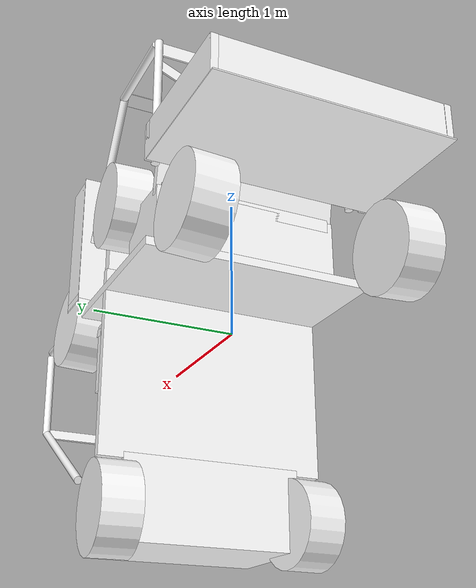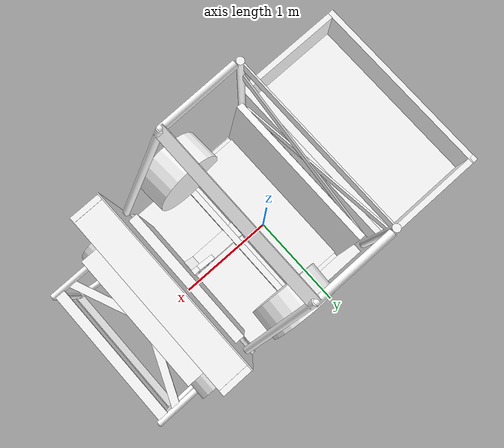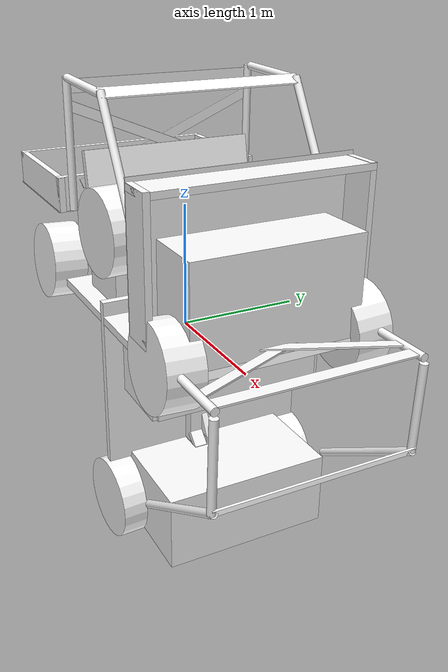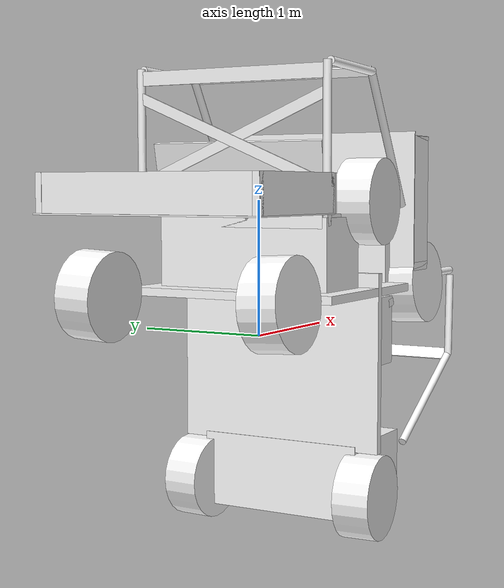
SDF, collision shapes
<?xml version="1.0" encoding="UTF-8"?>
<sdf version='1.9'>
   <model name="x500_dcamera">

    <include merge='true'>
      <name>x500</name>
      <pose>0 0 0 0 0 0</pose>
      <uri>model://x500/model.sdf</uri>
    </include>

    <include merge='true'>
      <name>dcamera</name>
      <pose>0 0 0 0 1.5708 0</pose>
      <uri>model://camera/model.sdf</uri>
    </include>

    <joint name="camera_joint" type="fixed">
      <parent>base_link</parent>
      <child>camera_link</child>
      <axis>
        <xyz>0 1 0</xyz>
      </axis>
    </joint>

    <static>false</static>

  </model>
</sdf>

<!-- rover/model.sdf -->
<sdf version="1.5">
  <model name="rover">
    <static>false</static>
    <link name="base_link">
      <inertial>
        <!-- subtracted wheel weights from dry weight of 771 kg -->
        <!-- http://www.polaris.com/en-us/ranger-utv/side-by-sides/ranger-ev/specifications -->
        <mass>720.0</mass>
        <inertia>
          <ixx>140</ixx>
          <ixy>0.0</ixy>
          <iyy>550</iyy>
          <ixz>0.0</ixz>
          <iyz>0.0</iyz>
          <izz>550</izz>
        </inertia>
        <!-- chassis c.o.g. near lateral/longitudinal center, height of 0.4 m -->
        <pose>0.1 0 0.4 0 0 0</pose>
      </inertial>
      <visual name="visual">
        <pose>0 0 0 0 0 -1.570796</pose>
        <geometry>
          <mesh>
            <uri>model://rover/meshes/polaris.dae</uri>
            <submesh>
              <name>Body</name>
              <center>false</center>
            </submesh>
          </mesh>
        </geometry>
        <material>
          <diffuse>1.0 1.0 1.0</diffuse>
          <specular>1.0 1.0 1.0</specular>
          <pbr>
            <metal>
              <albedo_map>model://rover/materials/textures/RangerXP900_Diffuse.png</albedo_map>
            </metal>
          </pbr>
        </material>
      </visual>
      <collision name="base_link_bottom">
        <pose>0.2 0.0 0.335 0 0 0</pose>
        <geometry>
          <box>
            <size>1.34 1.65746 0.06</size>
          </box>
        </geometry>
      </collision>
      <collision name="cargo_bottom">
        <pose>-1.0 0.0 0.921 0.0 0.0 0.0</pose>
        <geometry>
          <box>
            <size>1.04609 1.6998 0.01</size>
          </box>
        </geometry>
      </collision>
      <collision name="cargo_front">
        <pose>-0.495 0.0 1.06 0.0 0.0 0.0</pose>
        <geometry>
          <box>
            <size>0.05 1.69982 0.27</size>
          </box>
        </geometry>
      </collision>
      <collision name="cargo_back">
        <pose>-1.465 0.0 1.06 0.0 0.0 0.0</pose>
        <geometry>
          <box>
            <size>0.05 1.69982 0.27</size>
          </box>
        </geometry>
      </collision>
      <collision name="cargo_left">
        <pose>-0.97 0.82491 1.06 0.0 0.0 0.0</pose>
        <geometry>
          <box>
            <size>1.04609 0.05 0.27</size>
          </box>
        </geometry>
      </collision>
      <collision name="cargo_right">
        <pose>-0.97 -0.82491 1.06 0.0 0.0 0.0</pose>
        <geometry>
          <box>
            <size>1.04609 0.05 0.27</size>
          </box>
        </geometry>
      </collision>
      <collision name="seat">
        <pose>0.0 0.0 0.62 0 0 0</pose>
        <geometry>
          <box>
            <size>0.52167 1.37206 0.53369</size>
          </box>
        </geometry>
        <surface>
          <contact>
            <ode>
              <min_depth>0.01</min_depth>
            </ode>
          </contact>
        </surface>
      </collision>
      <collision name="mud_seat">
        <pose>0.0 0.0 0.86 0 0 0</pose>
        <geometry>
          <box>
            <size>0.52167 1.30 0.1</size>
          </box>
        </geometry>
        <surface>
          <contact>
            <collide_without_contact>true</collide_without_contact>
          </contact>
        </surface>
      </collision>
      <sensor name="seat_contact" type="contact">
        <always_on>true</always_on>
        <update_rate>1000</update_rate>
        <contact>
          <collision>mud_seat</collision>
        </contact>
      </sensor>
      <collision name="seat_back">
        <pose>-0.26 0.0 1.125 0.0 -0.2 0.0</pose>
        <geometry>
          <box>
            <size>0.06 1.37206 0.6</size>
          </box>
        </geometry>
      </collision>
      <collision name="engine">
        <pose>1.12 0.0 0.7 0.0 0.0 0.0</pose>
        <geometry>
          <box>
            <size>0.58 1.3 0.8</size>
          </box>
        </geometry>
      </collision>
      <collision name="rollcage_top_left">
        <pose>-0.02 0.76 1.936 0 1.60 0</pose>
        <geometry>
          <cylinder>
            <radius>0.03</radius>
            <length>0.68</length>
          </cylinder>
        </geometry>
      </collision>
      <collision name="rollcage_top_right">
        <pose>-0.02 -0.76 1.936 0 1.60 0</pose>
        <geometry>
          <cylinder>
            <radius>0.03</radius>
            <length>0.68</length>
          </cylinder>
        </geometry>
      </collision>
      <collision name="rollcage_top_front">
        <pose>0.315 0.0 1.93 0 -1.0 0</pose>
        <geometry>
          <box>
            <size>0.01299 1.54 0.10226</size>
          </box>
        </geometry>
      </collision>
      <collision name="rollcage_top_back">
        <pose>-0.410 0.0 1.88 0 0 0</pose>
        <geometry>
          <box>
            <size>0.01299 1.54 0.10226</size>
          </box>
        </geometry>
      </collision>
      <collision name="rollcage_front_left">
        <pose>0.602 0.755 1.45 0 -0.54 0</pose>
        <geometry>
          <cylinder>
            <radius>0.03</radius>
            <length>1.15</length>
          </cylinder>
        </geometry>
      </collision>
      <collision name="rollcage_front_right">
        <pose>0.602 -0.755 1.45 0 -0.54 0</pose>
        <geometry>
          <cylinder>
            <radius>0.03</radius>
            <length>1.15</length>
          </cylinder>
        </geometry>
      </collision>
      <collision name="rollcage_back_left">
        <pose>-0.4 0.755 1.45 0 0 0</pose>
        <geometry>
          <cylinder>
            <radius>0.03</radius>
            <length>1.00</length>
          </cylinder>
        </geometry>
      </collision>
      <collision name="rollcage_back_right">
        <pose>-0.4 -0.755 1.45 0 0 0</pose>
        <geometry>
          <cylinder>
            <radius>0.03</radius>
            <length>1.00</length>
          </cylinder>
        </geometry>
      </collision>
      <collision name="rollcage_X_1">
        <pose>-0.411 0.04 1.445 0.397 0 0</pose>
        <geometry>
          <box>
            <size>0.01392 1.557245 0.078</size>
          </box>
        </geometry>
      </collision>
      <collision name="rollcage_X_2">
        <pose>-0.40 -0.04 1.445 -0.397 0 0</pose>
        <geometry>
          <box>
            <size>0.01392 1.557245 0.078</size>
          </box>
        </geometry>
      </collision>
      <collision name="central_hump1_collision">
        <pose>0.55 -0.1 0.4 0 0 0</pose>
        <geometry>
          <box>
            <size>0.6 0.15 0.1</size>
          </box>
        </geometry>
      </collision>
      <collision name="central_hump2_collision">
        <pose>0.7 -0.05 0.45 0 -0.5 0</pose>
        <geometry>
          <box>
            <size>0.20 0.05 0.1</size>
          </box>
        </geometry>
      </collision>
      <collision name="central_hump3_collision">
        <pose>0.798 -0.125 0.478 0 -0.8 0</pose>
        <geometry>
          <box>
            <size>0.129 0.1 0.05</size>
          </box>
        </geometry>
      </collision>
      <collision name="central_hump4_collision">
        <pose>0.8135 -0.05 0.45 0 0 0</pose>
        <geometry>
          <box>
            <size>0.10 0.05 0.1835</size>
          </box>
        </geometry>
      </collision>
      <collision name="central_hump5_collision">
        <pose>0.84 -0.125 0.45 0 0 0</pose>
        <geometry>
          <box>
            <size>0.03 0.1 0.1835</size>
          </box>
        </geometry>
      </collision>
      <collision name="central_hump6_collision">
        <pose>0.82 -0.125 0.475 0 0 0</pose>
        <geometry>
          <box>
            <size>0.03 0.1 0.05</size>
          </box>
        </geometry>
      </collision>
      <visual name="cargo_visual">
        <pose>-1.0 0 1.03230 0 0 -1.5707</pose>
        <geometry>
          <mesh>
            <uri>model://rover/meshes/polaris.dae</uri>
            <submesh>
              <name>Bed</name>
              <center>true</center>
            </submesh>
          </mesh>
        </geometry>
        <material>
          <diffuse>1.0 1.0 1.0</diffuse>
          <specular>1.0 1.0 1.0</specular>
          <pbr>
            <metal>
              <albedo_map>model://rover/materials/textures/RangerXP900_Diffuse.png</albedo_map>
            </metal>
          </pbr>
        </material>
      </visual>
      <visual name="tailgate_visual">
        <pose>-1.492 0 1.03 0 0 -1.5707</pose>
        <geometry>
          <mesh>
            <uri>model://rover/meshes/polaris.dae</uri>
            <submesh>
              <name>Tail_Gate</name>
              <center>true</center>
            </submesh>
          </mesh>
        </geometry>
        <material>
          <diffuse>1.0 1.0 1.0</diffuse>
          <specular>1.0 1.0 1.0</specular>
          <pbr>
            <metal>
              <albedo_map>model://rover/materials/textures/RangerXP900_Diffuse.png</albedo_map>
            </metal>
          </pbr>
        </material>
      </visual>
      <visual name="front_left_brake_visual">
        <pose>1.12 -0.57488 0.35516 3.1415 0 1.5707</pose>
        <geometry>
          <mesh>
            <uri>model://rover/meshes/polaris.dae</uri>
            <submesh>
              <name>Brake_Front_Left</name>
              <center>true</center>
            </submesh>
          </mesh>
        </geometry>
        <material>
          <diffuse>1.0 1.0 1.0</diffuse>
          <specular>1.0 1.0 1.0</specular>
          <pbr>
            <metal>
              <albedo_map>model://rover/materials/textures/RangerXP900_Diffuse.png</albedo_map>
            </metal>
          </pbr>
        </material>
      </visual>
      <visual name="front_right_brake_visual">
        <pose>1.12 0.57488 0.35516 3.1415 0 1.5707</pose>
        <geometry>
          <mesh>
            <uri>model://rover/meshes/polaris.dae</uri>
            <submesh>
              <name>Brake_Front_Right</name>
              <center>true</center>
            </submesh>
          </mesh>
        </geometry>
        <material>
          <diffuse>1.0 1.0 1.0</diffuse>
          <specular>1.0 1.0 1.0</specular>
          <pbr>
            <metal>
              <albedo_map>model://rover/materials/textures/RangerXP900_Diffuse.png</albedo_map>
            </metal>
          </pbr>
        </material>
      </visual>
      <visual name="central_hump1">
        <pose>0.55 -0.1 0.4 0 0 0</pose>
        <geometry>
          <box>
            <size>0.6 0.15 0.1</size>
          </box>
        </geometry>
        <material>
          <script>
            <uri>file://media/materials/scripts/gazebo.material</uri>
            <name>Gazebo/DarkGrey</name>
          </script>
        </material>
      </visual>
      <visual name="central_hump2">
        <pose>0.7 -0.05 0.45 0 -0.5 0</pose>
        <geometry>
          <box>
            <size>0.20 0.05 0.1</size>
          </box>
        </geometry>
        <material>
          <script>
            <uri>file://media/materials/scripts/gazebo.material</uri>
            <name>Gazebo/DarkGrey</name>
          </script>
        </material>
      </visual>
      <visual name="central_hump3">
        <pose>0.798 -0.125 0.478 0 -0.8 0</pose>
        <geometry>
          <box>
            <size>0.129 0.1 0.05</size>
          </box>
        </geometry>
        <material>
          <script>
            <uri>file://media/materials/scripts/gazebo.material</uri>
            <name>Gazebo/DarkGrey</name>
          </script>
        </material>
      </visual>
      <visual name="central_hump4">
        <pose>0.8135 -0.05 0.45 0 0 0</pose>
        <geometry>
          <box>
            <size>0.10 0.05 0.1835</size>
          </box>
        </geometry>
        <material>
          <script>
            <uri>file://media/materials/scripts/gazebo.material</uri>
            <name>Gazebo/DarkGrey</name>
          </script>
        </material>
      </visual>
      <visual name="central_hump5">
        <pose>0.84 -0.125 0.45 0 0 0</pose>
        <geometry>
          <box>
            <size>0.03 0.1 0.1835</size>
          </box>
        </geometry>
        <material>
          <script>
            <uri>file://media/materials/scripts/gazebo.material</uri>
            <name>Gazebo/DarkGrey</name>
          </script>
        </material>
      </visual>
      <visual name="central_hump6">
        <pose>0.82 -0.125 0.475 0 0 0</pose>
        <geometry>
          <box>
            <size>0.03 0.1 0.05</size>
          </box>
        </geometry>
        <material>
          <script>
            <uri>file://media/materials/scripts/gazebo.material</uri>
            <name>Gazebo/DarkGrey</name>
          </script>
        </material>
      </visual>
    </link>
    <link name='rover/imu_link'>
      <pose>0 0 0 0 0 0</pose>
      <inertial>
        <pose>0 0 0 0 0 0</pose>
        <mass>0.015</mass>
        <inertia>
          <ixx>1e-05</ixx>
          <ixy>0</ixy>
          <ixz>0</ixz>
          <iyy>1e-05</iyy>
          <iyz>0</iyz>
          <izz>1e-05</izz>
        </inertia>
      </inertial>
    </link>
    <joint name='rover/imu_joint' type='revolute'>
      <child>rover/imu_link</child>
      <parent>base_link</parent>
      <axis>
        <xyz>1 0 0</xyz>
        <limit>
          <lower>0</lower>
          <upper>0</upper>
          <effort>0</effort>
          <velocity>0</velocity>
        </limit>
        <dynamics>
          <spring_reference>0</spring_reference>
          <spring_stiffness>0</spring_stiffness>
        </dynamics>
        <use_parent_model_frame>1</use_parent_model_frame>
      </axis>
    </joint>
    <link name="front_left_wheel">
      <pose>1.20223 0.71562 0.34697 -1.52 0.0 0.0</pose>
      <inertial>
        <mass>12</mass>
        <!-- estimated from http://www.rzrforums.net/wheels-tires/1729-tire-wheel-weights-most-sizes.html -->
        <inertia>
          <ixx>0.5</ixx>
          <ixy>0.0</ixy>
          <iyy>0.5</iyy>
          <ixz>0.0</ixz>
          <iyz>0.0</iyz>
          <izz>1.0</izz>
        </inertia>
      </inertial>
      <collision name="collision">
        <geometry>
          <cylinder>
            <radius>0.3175</radius>
            <length>0.2794</length>
          </cylinder>
        </geometry>
        <max_contacts>1</max_contacts>
        <surface>
          <friction>
            <ode>
              <mu>1.0</mu>
              <mu2>1.0</mu2>
              <fdir1>0 0 1</fdir1>
              <slip1>0.0</slip1>
              <slip2>0.0</slip2>
            </ode>
          </friction>
          <contact>
            <ode>
              <min_depth>0.005</min_depth>
              <kp>1e8</kp>
            </ode>
          </contact>
        </surface>
      </collision>
      <visual name="tire_visual">
        <pose>0 0 0 3.14159 1.570796 0</pose>
        <geometry>
          <mesh>
            <uri>model://rover/meshes/polaris.dae</uri>
            <scale>1.003700111 0.886200464 0.886200464</scale>
            <submesh>
              <name>Wheel_Front_Left</name>
              <center>true</center>
            </submesh>
          </mesh>
        </geometry>
        <material>
          <diffuse>1.0 1.0 1.0</diffuse>
          <specular>1.0 1.0 1.0</specular>
          <pbr>
            <metal>
              <albedo_map>model://rover/materials/textures/RangerXP900_Diffuse.png</albedo_map>
            </metal>
          </pbr>
        </material>
      </visual>
    </link>
    <link name="front_right_wheel">
      <pose>1.20223 -0.71562 0.34697 1.52 0.0 0.0</pose>
      <inertial>
        <mass>12</mass>
        <!-- estimated from http://www.rzrforums.net/wheels-tires/1729-tire-wheel-weights-most-sizes.html -->
        <inertia>
          <ixx>0.5</ixx>
          <ixy>0.0</ixy>
          <iyy>0.5</iyy>
          <ixz>0.0</ixz>
          <iyz>0.0</iyz>
          <izz>1.0</izz>
        </inertia>
      </inertial>
      <collision name="collision">
        <geometry>
          <cylinder>
            <radius>0.3175</radius>
            <length>0.2794</length>
          </cylinder>
        </geometry>
        <max_contacts>1</max_contacts>
        <surface>
          <friction>
            <ode>
              <mu>1.0</mu>
              <mu2>1.0</mu2>
              <fdir1>0 0 1</fdir1>
              <slip1>0.0</slip1>
              <slip2>0.0</slip2>
            </ode>
          </friction>
          <contact>
            <ode>
              <min_depth>0.005</min_depth>
              <kp>1e8</kp>
            </ode>
          </contact>
        </surface>
      </collision>
      <visual name="visual">
        <pose>0 0 0 0 -1.570796 0</pose>
        <geometry>
          <mesh>
            <uri>model://rover/meshes/polaris.dae</uri>
            <scale>1.003700111 0.886200464 0.886200464</scale>
            <submesh>
              <name>Wheel_Front_Right</name>
              <center>true</center>
            </submesh>
          </mesh>
        </geometry>
        <material>
          <diffuse>1.0 1.0 1.0</diffuse>
          <specular>1.0 1.0 1.0</specular>
          <pbr>
            <metal>
              <albedo_map>model://rover/materials/textures/RangerXP900_Diffuse.png</albedo_map>
            </metal>
          </pbr>
        </material>
      </visual>
    </link>
    <link name="rear_left_wheel">
      <pose>-0.99377 0.71562 0.34697 -1.52 0.0 0.0</pose>
      <inertial>
        <mass>12</mass>
        <!-- estimated from http://www.rzrforums.net/wheels-tires/1729-tire-wheel-weights-most-sizes.html -->
        <inertia>
          <ixx>0.5</ixx>
          <ixy>0.0</ixy>
          <iyy>0.5</iyy>
          <ixz>0.0</ixz>
          <iyz>0.0</iyz>
          <izz>1.0</izz>
        </inertia>
      </inertial>
      <collision name="collision">
        <geometry>
          <cylinder>
            <radius>0.3175</radius>
            <length>0.2794</length>
          </cylinder>
        </geometry>
        <max_contacts>1</max_contacts>
        <surface>
          <friction>
            <ode>
              <mu>1.0</mu>
              <mu2>1.0</mu2>
              <fdir1>0 0 1</fdir1>
              <slip1>0.0</slip1>
              <slip2>0.0</slip2>
            </ode>
          </friction>
          <contact>
            <ode>
              <min_depth>0.005</min_depth>
              <kp>1e8</kp>
            </ode>
          </contact>
        </surface>
      </collision>
      <visual name="visual">
        <pose>0 0 0 0 -1.570796 0</pose>
        <geometry>
          <mesh>
            <uri>model://rover/meshes/polaris.dae</uri>
            <scale>1.003700111 0.886200464 0.886200464</scale>
            <submesh>
              <name>Wheels_Rear_Left</name>
              <center>true</center>
            </submesh>
          </mesh>
        </geometry>
        <material>
          <diffuse>1.0 1.0 1.0</diffuse>
          <specular>1.0 1.0 1.0</specular>
          <pbr>
            <metal>
              <albedo_map>model://rover/materials/textures/RangerXP900_Diffuse.png</albedo_map>
            </metal>
          </pbr>
        </material>
      </visual>
    </link>
    <link name="rear_right_wheel">
      <pose>-0.99377 -0.71562 0.34697 1.52 0.0 0.0</pose>
      <inertial>
        <mass>12</mass>
        <!-- estimated from http://www.rzrforums.net/wheels-tires/1729-tire-wheel-weights-most-sizes.html -->
        <inertia>
          <ixx>0.5</ixx>
          <ixy>0.0</ixy>
          <iyy>0.5</iyy>
          <ixz>0.0</ixz>
          <iyz>0.0</iyz>
          <izz>1.0</izz>
        </inertia>
      </inertial>
      <collision name="collision">
        <geometry>
          <cylinder>
            <radius>0.3175</radius>
            <length>0.2794</length>
          </cylinder>
        </geometry>
        <max_contacts>1</max_contacts>
        <surface>
          <friction>
            <ode>
              <mu>1.0</mu>
              <mu2>1.0</mu2>
              <fdir1>0 0 1</fdir1>
              <slip1>0.0</slip1>
              <slip2>0.0</slip2>
            </ode>
          </friction>
          <contact>
            <ode>
              <min_depth>0.005</min_depth>
              <kp>1e8</kp>
            </ode>
          </contact>
        </surface>
      </collision>
      <visual name="visual">
        <pose>0 0 0 0 -1.570796 0</pose>
        <geometry>
          <mesh>
            <uri>model://rover/meshes/polaris.dae</uri>
            <scale>1.003700111 0.886200464 0.886200464</scale>
            <submesh>
              <name>Wheels_Rear_Right</name>
              <center>true</center>
            </submesh>
          </mesh>
        </geometry>
        <material>
          <diffuse>1.0 1.0 1.0</diffuse>
          <specular>1.0 1.0 1.0</specular>
          <pbr>
            <metal>
              <albedo_map>model://rover/materials/textures/RangerXP900_Diffuse.png</albedo_map>
            </metal>
          </pbr>
        </material>
      </visual>
    </link>
    <link name="front_right_wheel_steering_block">
      <pose>1.20223 -0.5 0.35515 1.570796 0.0 0.0</pose>
      <inertial>
        <mass>1</mass>
        <inertia>
          <ixx>0.01</ixx>
          <ixy>0.0</ixy>
          <iyy>0.01</iyy>
          <ixz>0.0</ixz>
          <iyz>0.0</iyz>
          <izz>0.01</izz>
        </inertia>
      </inertial>
      <collision name="collision">
        <geometry>
          <cylinder>
            <radius>0.05</radius>
            <length>0.01</length>
          </cylinder>
        </geometry>
      </collision>
    </link>
    <link name="front_left_wheel_steering_block">
      <pose>1.20223 0.5 0.35515 1.570796 0.0 0.0</pose>
      <inertial>
        <mass>1</mass>
        <inertia>
          <ixx>0.01</ixx>
          <ixy>0.0</ixy>
          <iyy>0.01</iyy>
          <ixz>0.0</ixz>
          <iyz>0.0</iyz>
          <izz>0.01</izz>
        </inertia>
      </inertial>
      <collision name="collision">
        <geometry>
          <cylinder>
            <radius>0.05</radius>
            <length>0.01</length>
          </cylinder>
        </geometry>
      </collision>
    </link>
    <joint type="revolute" name="front_left_steering_joint">
      <child>front_left_wheel_steering_block</child>
      <parent>base_link</parent>
      <axis>
        <xyz>0 0 1</xyz>
        <dynamics>
          <damping>50.0</damping>
        </dynamics>
        <use_parent_model_frame>true</use_parent_model_frame>
      </axis>
      <physics>
        <ode>
          <cfm_damping>1</cfm_damping>
          <limit>
            <cfm>0.000000</cfm>
            <erp>0.900000</erp>
          </limit>
        </ode>
      </physics>
    </joint>
    <joint type="revolute" name="front_left_wheel_joint">
      <child>front_left_wheel</child>
      <parent>front_left_wheel_steering_block</parent>
      <axis>
        <xyz>0 1 0.05</xyz>
        <use_parent_model_frame>true</use_parent_model_frame>
      </axis>
    </joint>
    <joint type="revolute" name="front_right_steering_joint">
      <child>front_right_wheel_steering_block</child>
      <parent>base_link</parent>
      <axis>
        <xyz>0 0 1</xyz>
        <dynamics>
          <damping>50.0</damping>
        </dynamics>
        <use_parent_model_frame>true</use_parent_model_frame>
      </axis>
      <physics>
        <ode>
          <cfm_damping>1</cfm_damping>
          <limit>
            <cfm>0.000000</cfm>
            <erp>0.900000</erp>
          </limit>
        </ode>
      </physics>
    </joint>
    <joint type="revolute" name="front_right_wheel_joint">
      <child>front_right_wheel</child>
      <parent>front_right_wheel_steering_block</parent>
      <axis>
        <xyz>0 1 -0.05</xyz>
        <use_parent_model_frame>true</use_parent_model_frame>
      </axis>
    </joint>
    <joint type="revolute" name="rear_left_wheel_joint">
      <child>rear_left_wheel</child>
      <parent>base_link</parent>
      <axis>
        <xyz>0 1 0.05</xyz>
        <use_parent_model_frame>true</use_parent_model_frame>
      </axis>
    </joint>
    <joint type="revolute" name="rear_right_wheel_joint">
      <pose>0.0 0.0 -0.1 0 0 0</pose>
      <child>rear_right_wheel</child>
      <parent>base_link</parent>
      <axis>
        <xyz>0 1 -0.05</xyz>
        <use_parent_model_frame>true</use_parent_model_frame>
      </axis>
    </joint>

    <plugin
        filename="gz-sim-joint-controller-system"
        name="gz::sim::systems::JointController">
        <joint_name>front_left_wheel_joint</joint_name>
        <joint_name>front_right_wheel_joint</joint_name>
        <use_force_commands>false</use_force_commands>
        <use_actuator_msg>false</use_actuator_msg>
        <actuator_number></actuator_number>
        <p_gain>10.0</p_gain>
        <i_gain>1.0</i_gain>
        <d_gain>0.1</d_gain>
        <i_max>20.0</i_max>
        <i_min>-20.0</i_min>
        <cmd_max>100.0</cmd_max>
        <cmd_min>-100.0</cmd_min>
        <cmd_offset>0.0</cmd_offset>
        <initial_velocity>0.0</initial_velocity>
        <topic>/rover/cmd_vel</topic>
        <sub_topic></sub_topic>
    </plugin>

    <plugin
        filename="gz-sim-joint-position-controller-system"
        name="gz::sim::systems::JointPositionController">
        <joint_name>front_left_steering_joint</joint_name>
        <joint_name>front_right_steering_joint</joint_name>
        <joint_index>0</joint_index>
        <use_velocity_commands>true</use_velocity_commands>
        <use_actuator_msg>false</use_actuator_msg>
        <actuator_number></actuator_number>
        <p_gain>1.0</p_gain>
        <i_gain>0.1</i_gain>
        <d_gain>0.01</d_gain>
        <i_max>0.3</i_max>
        <i_min>-0.3</i_min>
        <cmd_max>0.7</cmd_max>
        <cmd_min>-0.7</cmd_min>
        <cmd_offset>0.0</cmd_offset>
        <initial_position>0.0</initial_position>
        <topic>/rover/cmd_steer</topic>
        <sub_topic></sub_topic>
    </plugin>

    <!-- Moving Forward-->
    <plugin filename="gz-sim-triggered-publisher-system"
            name="gz::sim::systems::TriggeredPublisher">
        <input type="gz.msgs.Int32" topic="/keyboard/keypress">
            <match field="data">16777235</match>
        </input>
        <output type="gz.msgs.Double" topic="/rover/cmd_vel">
            data: 3.0
        </output>
        <output type="gz.msgs.Double" topic="/rover/cmd_steer">
            data: 0.0
        </output>
    </plugin>

    <!-- Moving Backword-->
    <plugin filename="gz-sim-triggered-publisher-system"
            name="gz::sim::systems::TriggeredPublisher">
        <input type="gz.msgs.Int32" topic="/keyboard/keypress">
            <match field="data">16777237</match>
        </input>
        <output type="gz.msgs.Double" topic="/rover/cmd_vel">
            data: -3.0
        </output>
        <output type="gz.msgs.Double" topic="/rover/cmd_steer">
            data: 0.0
        </output>
    </plugin>

    <!-- Turn Right-->
    <plugin filename="gz-sim-triggered-publisher-system"
            name="gz::sim::systems::TriggeredPublisher">
        <input type="gz.msgs.Int32" topic="/keyboard/keypress">
            <match field="data">16777236</match>
        </input>
        <output type="gz.msgs.Double" topic="/rover/cmd_steer">
            data: -0.4
        </output>
    </plugin>

    <!-- Turn Left-->
    <plugin filename="gz-sim-triggered-publisher-system"
            name="gz::sim::systems::TriggeredPublisher">
        <input type="gz.msgs.Int32" topic="/keyboard/keypress">
            <match field="data">16777234</match>
        </input>
        <output type="gz.msgs.Double" topic="/rover/cmd_steer">
            data: 0.4
        </output>
    </plugin>

    <!-- Stop-->
    <plugin filename="gz-sim-triggered-publisher-system"
            name="gz::sim::systems::TriggeredPublisher">
        <input type="gz.msgs.Int32" topic="/keyboard/keypress">
            <match field="data">83</match>
        </input>
        <output type="gz.msgs.Double" topic="/rover/cmd_vel">
            data: 0.0
        </output>
        <output type="gz.msgs.Double" topic="/rover/cmd_steer">
            data: 0.0
        </output>
    </plugin>

  </model>
</sdf>
